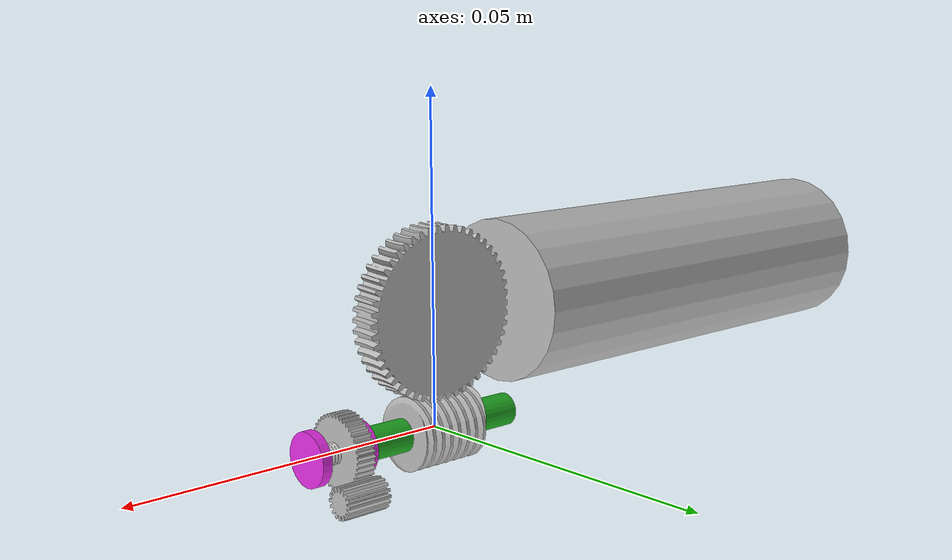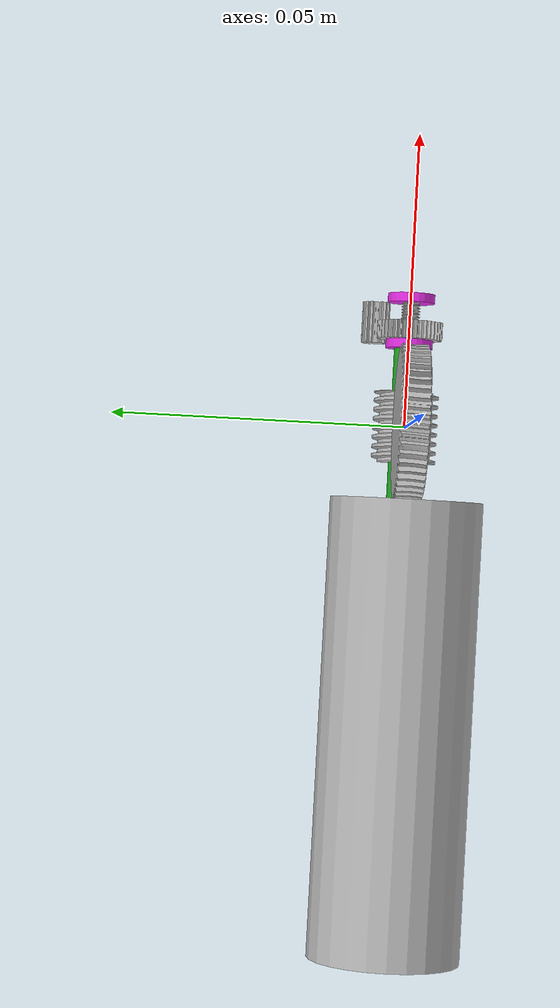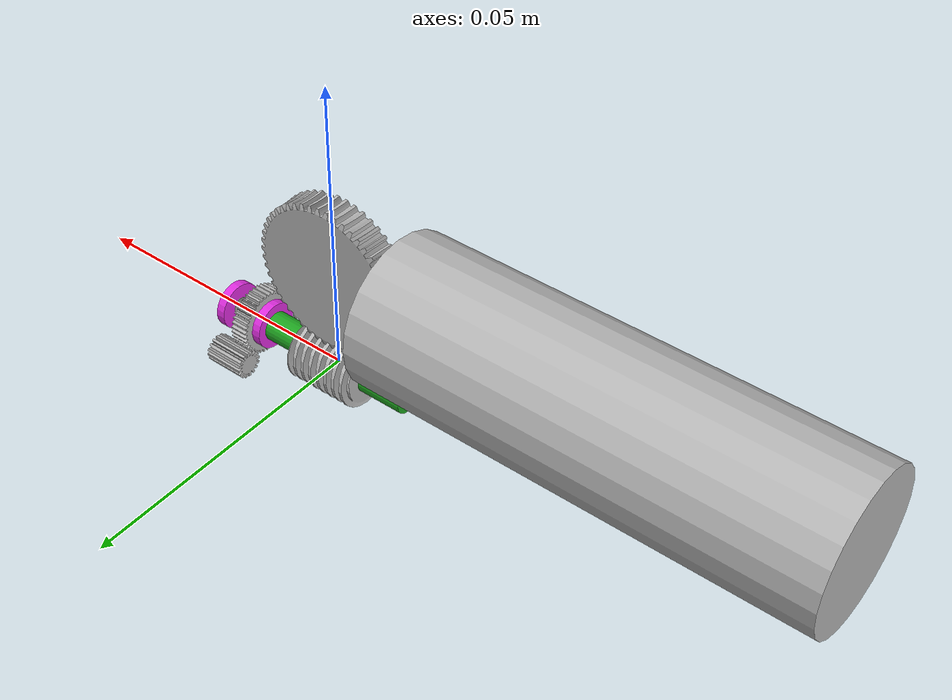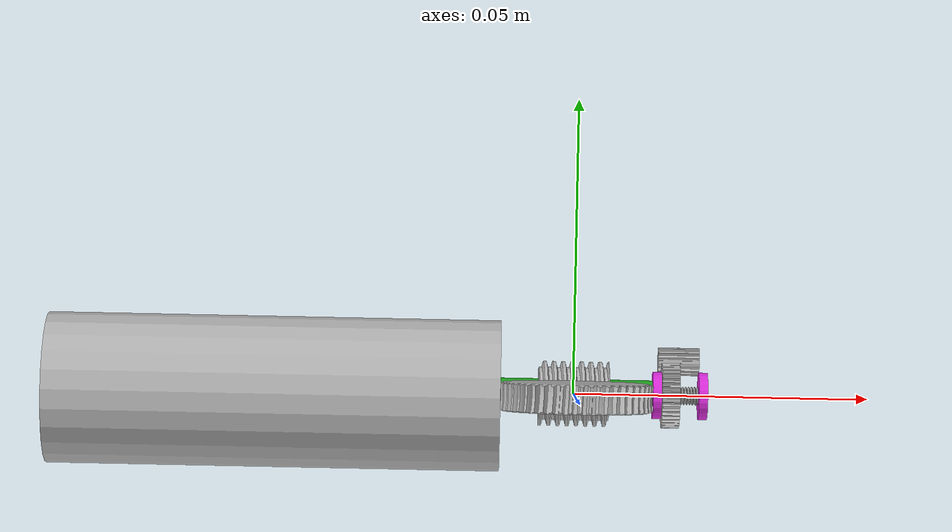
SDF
<?xml version="1.0"?>
<sdf version="1.7" xmlns:drake="drake.mit.edu">
  <model name="MotorAssembly">
    <link name="spur">
      <pose>0.0 0 0.0174 3.14159265358979311599 0 0</pose>
      <inertial>
        <pose>0.0 0.0 0.0 0 0 0</pose>
        <mass>0.003</mass>
        <inertia>
          <ixx> 1.33e-5 </ixx>
          <ixy> 0.0 </ixy>
          <ixz> 0.0 </ixz>
          <iyy> 2.535e-5 </iyy>
          <iyz> 0.0 </iyz>
          <izz> 1.33e-5 </izz>
        </inertia>
      </inertial>
      <visual name="spur_visual">
        <pose>0 0 0 0 0 0</pose>
        <geometry>
          <mesh>
            <uri>spur.obj</uri>
            <scale>1 1 1</scale>
          </mesh>
        </geometry>
      </visual>
      <collision name="spur_collision">
        <pose>0 0 0 0 0 0</pose>
        <geometry>
          <mesh>
            <uri>spur.vtk</uri>
            <scale>1 1 1</scale>
          </mesh>
        </geometry>
        <drake:proximity_properties>
          <drake:compliant_hydroelastic/>
          <drake:hydroelastic_modulus> 5.0e8 </drake:hydroelastic_modulus>
          <drake:hunt_crossley_dissipation> 10 </drake:hunt_crossley_dissipation>
          <drake:mu_dynamic> 0.0558 </drake:mu_dynamic>
          <drake:mu_static> 0.0558 </drake:mu_static>
        </drake:proximity_properties>
      </collision>
    </link>
    <link name="finger">
      <pose>-0.05 0 0.01725 0 0 0</pose>
      <inertial>
        <pose>0.0 0.0 0.0 0 0 0</pose>
        <mass>0.2</mass>
        <inertia>
          <ixx> 1.5625e-7 </ixx>
          <ixy> 0.0 </ixy>
          <ixz> 0.0 </ixz>
          <iyy> 9.3828125e-5 </iyy>
          <iyz> 0.0 </iyz>
          <izz> 9.3828125e-5 </izz>
        </inertia>
      </inertial>
      <visual name="finger_visual">
        <pose>0 0 0 0 1.570796 0</pose>
        <geometry>
          <cylinder>
            <radius>0.0125</radius>
            <length>0.075</length>
          </cylinder>
        </geometry>
      </visual>
      <collision name="finger_collision">
        <pose>0 0 0 0 1.570796 0</pose>
        <geometry>
          <cylinder>
            <radius>0.0125</radius>
            <length>0.075</length>
          </cylinder>
        </geometry>
        <drake:proximity_properties>
          <drake:compliant_hydroelastic/>
          <drake:hydroelastic_modulus> 1.0e8 </drake:hydroelastic_modulus>
          <drake:hunt_crossley_dissipation> 10 </drake:hunt_crossley_dissipation>
	        <drake:mesh_resolution_hint> 0.00625 </drake:mesh_resolution_hint>
          <drake:mu_dynamic> 1.5 </drake:mu_dynamic>
          <drake:mu_static> 1.5 </drake:mu_static>
        </drake:proximity_properties>
      </collision>

    </link>
    <joint name="finger_weld" type="fixed">
      <parent>spur</parent>
      <child>finger</child>
      <!-- Pose X_CJ of the joint frame J in frame C of the child link. -->
      <pose>0 0 0 0 0 0</pose>
    </joint>
    <joint name="spur_world" type="revolute">
      <child>spur</child>
      <parent>world</parent>
      <pose> 0 0 0 0 0 0 </pose>
      <axis>
        <xyz>0 1 0</xyz>
	<limit>
	  <lower>-inf</lower>
	  <upper>0</upper>
          <effort>0</effort>
        </limit>
      </axis>
    </joint>
    <link name="worm">
      <pose>0 0 0 3.14159265358979311599 0 0</pose>
      <inertial>
        <pose>0.0 0.0 0.0 0 0 0</pose>
        <mass>0.001</mass>
        <inertia>
          <ixx> 1.25e-6 </ixx>
          <ixy> 0.0 </ixy>
          <ixz> 0.0 </ixz>
          <iyy> 1.825e-6 </iyy>
          <iyz> 0.0 </iyz>
          <izz> 1.825e-6 </izz>
        </inertia>
      </inertial>
      <visual name="worm_visual">
        <pose>0 0 0 0 0 0</pose>
        <geometry>
          <mesh>
            <uri>worm.obj</uri>
            <scale>1 1 1</scale>
          </mesh>
        </geometry>
      </visual>
      <collision name="worm_collision">
        <pose>0 0 0 0 0 0</pose>
        <geometry>
          <mesh>
            <uri>worm.vtk</uri>
            <scale>1 1 1</scale>
          </mesh>
        </geometry>
        <drake:proximity_properties>
          <drake:compliant_hydroelastic/>
          <drake:hydroelastic_modulus> 5.0e8 </drake:hydroelastic_modulus>
          <drake:hunt_crossley_dissipation> 10 </drake:hunt_crossley_dissipation>
          <drake:mu_dynamic> 0.0552 </drake:mu_dynamic>
          <drake:mu_static> 0.0552 </drake:mu_static>
        </drake:proximity_properties>
      </collision>
      <visual name="worm_screw_visual">
        <pose>0.019 0 0 0 0 0</pose>
        <geometry>
          <mesh>
            <uri>screw.obj</uri>
            <scale>1 1 1</scale>
          </mesh>
        </geometry>
      </visual>
      <visual name="worm_washer_visual">
	      <!-- Shift the washer a bit down the threads. -->
	      <pose>0.01420 0 0 0 1.570796 0</pose>
        <geometry>
          <cylinder>
            <radius>0.004</radius>
            <length>0.0015</length>
          </cylinder>
        </geometry>
	<material>
	  <diffuse>0.886275 0.180392 0.886275</diffuse>
        </material>
      </visual>
      <collision name="worm_washer_collision">
	<!-- Shift the washer a bit down the threads. -->
	<pose>0.01420 0 0 0 1.570796 0</pose>
        <geometry>
          <cylinder>
            <radius>0.004</radius>
            <length>0.0015</length>
          </cylinder>
        </geometry>
        <drake:proximity_properties>
          <drake:compliant_hydroelastic/>
          <drake:hydroelastic_modulus> 1.0e6 </drake:hydroelastic_modulus>
          <drake:hunt_crossley_dissipation> 10 </drake:hunt_crossley_dissipation>
	  <drake:mesh_resolution_hint> 0.002 </drake:mesh_resolution_hint>
          <drake:mu_dynamic> 2 </drake:mu_dynamic>
          <drake:mu_static> 2 </drake:mu_static>
        </drake:proximity_properties>
      </collision>
      <visual name="worm_rod_visual">
	<pose>0 0 0 0 1.570796 0</pose>
        <geometry>
          <cylinder>
            <radius>0.0025</radius>
            <length>0.028</length>
          </cylinder>
        </geometry>
	<material>
	  <diffuse>0.121569 0.654902 0.129412</diffuse>
        </material>
      </visual>
    </link>
    <joint name="worm_world" type="revolute">
      <child>worm</child>
      <parent>world</parent>
      <axis>
        <xyz>1 0 0</xyz>
        <limit>
          <effort>0</effort>
        </limit>
      </axis>
    </joint>
    <link name="nut_gear">
      <pose>0.0165 0 0 0 0 0 </pose>
      <inertial>
        <pose>0.0 0.0 0.0 0 0 0</pose>
        <mass>0.0008</mass>
        <inertia>
          <ixx> 1.25e-8 </ixx>
          <ixy> 0.0 </ixy>
          <ixz> 0.0 </ixz>
          <iyy> 7e-9 </iyy>
          <iyz> 0.0 </iyz>
          <izz> 7e-9 </izz>
        </inertia>
      </inertial>
      <visual name="nut_gear_visual">
        <pose>0 0 0 0 0 0</pose>
        <geometry>
          <mesh>
            <uri>nut_gear.obj</uri>
            <scale>1 1 1</scale>
          </mesh>
        </geometry>
      </visual>
      <collision name="nut_gear_collision">
        <pose>0 0 0 0 0 0</pose>
        <geometry>
          <mesh>
            <uri>nut_gear.vtk</uri>
            <scale>1 1 1</scale>
          </mesh>
        </geometry>
        <drake:proximity_properties>
          <drake:compliant_hydroelastic/>
          <drake:hydroelastic_modulus> 5.0e8 </drake:hydroelastic_modulus>
          <drake:hunt_crossley_dissipation> 10 </drake:hunt_crossley_dissipation>
          <drake:mu_dynamic> 2 </drake:mu_dynamic>
          <drake:mu_static> 2 </drake:mu_static>
        </drake:proximity_properties>
      </collision>
    </link>
    <joint name="nut_gear_worm" type="screw">
      <child>nut_gear</child>
      <parent>worm</parent>
      <screw_thread_pitch>0.0005</screw_thread_pitch>
      <axis>
        <xyz>1 0 0</xyz>
        <limit>
          <effort>0</effort>
        </limit>
      </axis>
    </joint>
    <link name="nut_gear_stopper">
      <pose>0 0 0 0 0 0</pose>
      <inertial>
        <pose>0.0 0.0 0.0 0 0 0</pose>
        <mass>1</mass>
        <inertia>
          <ixx> 1 </ixx>
          <ixy> 0.0 </ixy>
          <ixz> 0.0 </ixz>
          <iyy> 1 </iyy>
          <iyz> 0.0 </iyz>
          <izz> 1 </izz>
        </inertia>
      </inertial>
     <visual name="nut_gear_stopper_visual">
	   <pose>0.022 0 0 0 1.570796 0</pose>
        <geometry>
          <cylinder>
            <radius>0.004</radius>
            <length>0.0015</length>
          </cylinder>
        </geometry>
	<material>
	  <diffuse>0.886275 0.180392 0.886275</diffuse>
        </material>
      </visual>
      <collision name="nut_gear_stopper_collision">
	    <pose>0.022 0 0 0 1.570796 0</pose>
        <geometry>
          <cylinder>
            <radius>0.004</radius>
            <length>0.0015</length>
          </cylinder>
        </geometry>
        <drake:proximity_properties>
          <drake:compliant_hydroelastic/>
          <drake:hydroelastic_modulus> 1.0e8 </drake:hydroelastic_modulus>
          <drake:hunt_crossley_dissipation> 10 </drake:hunt_crossley_dissipation>
	  <drake:mesh_resolution_hint> 0.002 </drake:mesh_resolution_hint>
          <drake:mu_dynamic> 1.5 </drake:mu_dynamic>
          <drake:mu_static> 1.5 </drake:mu_static>
        </drake:proximity_properties>
      </collision>
    </link>
    <joint name="nut_gear_stopper_weld" type="fixed">
      <parent>world</parent>
      <child>nut_gear_stopper</child>
      <pose>0 0 0 0 0 0</pose>
    </joint>

    <link name="motor_gear">
      <pose>0.018 0.005674 -0.00508 0 0 0 </pose>
      <inertial>
        <pose>0.0 0.0 0.0 0 0 0</pose>
        <mass>0.001</mass>
        <inertia>
          <ixx> 2.798978e-9 </ixx>
          <ixy> 0.0 </ixy>
          <ixz> 0.0 </ixz>
          <iyy> 5.4828223e-9 </iyy>
          <iyz> 0.0 </iyz>
          <izz> 5.4828223e-9 </izz>
        </inertia>
      </inertial>
      <visual name="motor_gear_visual">
        <pose>0 0 0 0 0 0</pose>
        <geometry>
          <mesh>
            <uri>motor_gear.obj</uri>
            <scale>1 1 1</scale>
          </mesh>
        </geometry>
      </visual>
      <collision name="motor_gear_collision">
        <pose>0 0 0 0 0 0</pose>
        <geometry>
          <mesh>
            <uri>motor_gear.vtk</uri>
            <scale>1 1 1</scale>
          </mesh>
        </geometry>
        <drake:proximity_properties>
          <drake:compliant_hydroelastic/>
          <drake:hydroelastic_modulus> 5.0e8 </drake:hydroelastic_modulus>
          <drake:hunt_crossley_dissipation> 10 </drake:hunt_crossley_dissipation>
          <drake:mu_dynamic> 0 </drake:mu_dynamic>
          <drake:mu_static> 0 </drake:mu_static>
        </drake:proximity_properties>
      </collision>
    </link>
    <joint name="motor_gear_world" type="revolute">
      <child>motor_gear</child>
      <parent>world</parent>
      <axis>
        <xyz>1 0 0</xyz>
        <limit>
          <effort>0.018</effort>
        </limit>
      </axis>
      <drake:controller_gains p="1e-17" d="1000" />
    </joint>

  </model>
</sdf>
